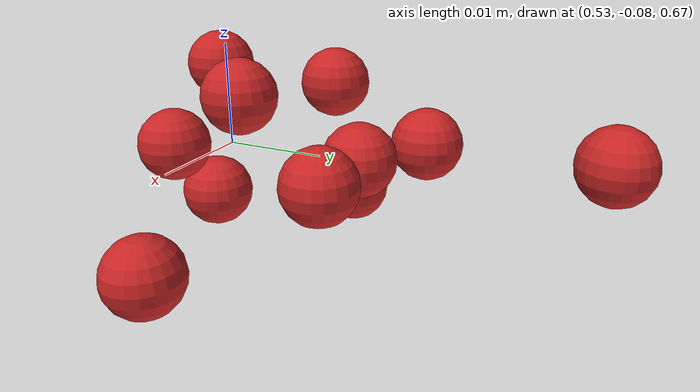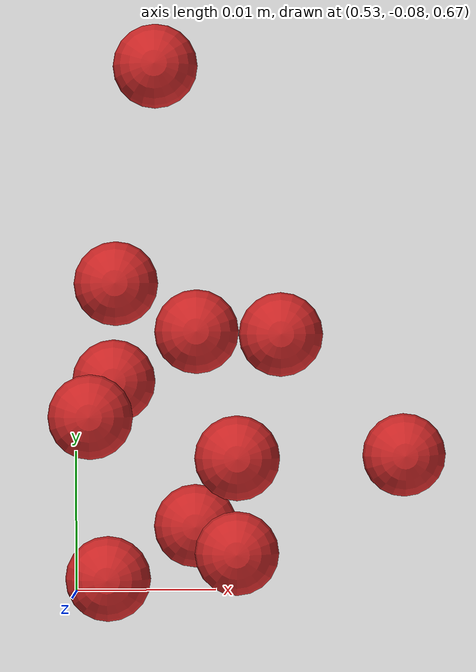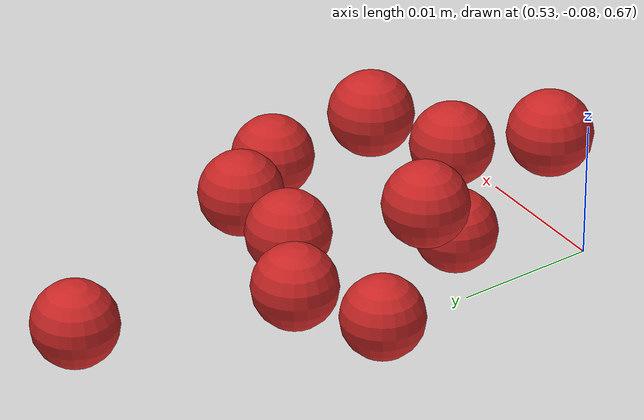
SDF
<sdf version="1.4">
 <world name="default">
  <model name="ground_plane">
   <static>1</static>
   <link name="link">
    <collision name="collision">
     <geometry><plane><normal>0 0 1</normal><size>100 100</size></plane></geometry>
     <surface><friction><ode><mu>100</mu><mu2>50</mu2></ode></friction></surface>
    </collision>
    <visual name="visual">
     <cast_shadows>0</cast_shadows>
     <geometry><plane><normal>0 0 1</normal><size>100 100</size></plane></geometry>
     <material>
      <script><uri>file://media/materials/scripts/gazebo.material</uri><name>Gazebo/Grey</name></script>
     </material>
    </visual>
    <velocity_decay><linear>0</linear><angular>0</angular></velocity_decay>
   </link>
  </model>
  <model name="sphere23">
   <pose>-0.012335 -0.028903 -0.063798 0.015874 0.008256 0.02301</pose>
   <link name="link">
    <pose>0.55876 -0.042781 0.738288 0 -0 0</pose>
    <inertial>
     <mass>0.0000001</mass>
     <inertia><ixx>0.00004</ixx><ixy>0</ixy><ixz>0</ixz><iyy>0.00004</iyy><iyz>0</iyz><izz>0.00004</izz></inertia>
    </inertial>
    <collision name="collision">
     <surface>
      <contact><ode><kp>1e+10</kp><kd>1</kd></ode></contact>
      <friction><ode><mu>0.01</mu><mu2>0.01</mu2></ode></friction>
     </surface>
     <geometry><sphere><radius>0.003</radius></sphere></geometry>
    </collision>
    <visual name="visual">
     <geometry><sphere><radius>0.003</radius></sphere></geometry>
     <material>
      <script><uri>file://media/materials/scripts/gazebo.material</uri><name>Gazebo/Red</name></script>
     </material>
    </visual>
    <velocity_decay><linear>0</linear><angular>0</angular></velocity_decay>
   </link>
   <static>0</static>
  </model>
  <model name="sphere71">
   <pose>-0.017201 -0.023582 -0.080373 -0.005462 0.004123 0.001031</pose>
   <link name="link">
    <pose>0.55876 -0.042781 0.756288 0 -0 0</pose>
    <inertial>
     <mass>0.0000001</mass>
     <inertia><ixx>0.00004</ixx><ixy>0</ixy><ixz>0</ixz><iyy>0.00004</iyy><iyz>0</iyz><izz>0.00004</izz></inertia>
    </inertial>
    <collision name="collision">
     <surface>
      <contact><ode><kp>1e+10</kp><kd>1</kd></ode></contact>
      <friction><ode><mu>0.01</mu><mu2>0.01</mu2></ode></friction>
     </surface>
     <geometry><sphere><radius>0.003</radius></sphere></geometry>
    </collision>
    <visual name="visual">
     <geometry><sphere><radius>0.003</radius></sphere></geometry>
     <material>
      <script><uri>file://media/materials/scripts/gazebo.material</uri><name>Gazebo/Red</name></script>
     </material>
    </visual>
    <velocity_decay><linear>0</linear><angular>0</angular></velocity_decay>
   </link>
   <static>0</static>
  </model>
  <model name="sphere73">
   <pose>-0.013422 -0.021461 -0.082614 -0.000653 -0.000434 -0.000436</pose>
   <link name="link">
    <pose>0.54676 -0.036781 0.756288 0 -0 0</pose>
    <inertial>
     <mass>0.0000001</mass>
     <inertia><ixx>0.00004</ixx><ixy>0</ixy><ixz>0</ixz><iyy>0.00004</iyy><iyz>0</iyz><izz>0.00004</izz></inertia>
    </inertial>
    <collision name="collision">
     <surface>
      <contact><ode><kp>1e+10</kp><kd>1</kd></ode></contact>
      <friction><ode><mu>0.01</mu><mu2>0.01</mu2></ode></friction>
     </surface>
     <geometry><sphere><radius>0.003</radius></sphere></geometry>
    </collision>
    <visual name="visual">
     <geometry><sphere><radius>0.003</radius></sphere></geometry>
     <material>
      <script><uri>file://media/materials/scripts/gazebo.material</uri><name>Gazebo/Red</name></script>
     </material>
    </visual>
    <velocity_decay><linear>0</linear><angular>0</angular></velocity_decay>
   </link>
   <static>0</static>
  </model>
  <model name="sphere74">
   <pose>-0.014007 -0.025548 -0.082469 -0.001105 -5.4e-05 0.00013</pose>
   <link name="link">
    <pose>0.55276 -0.036781 0.756288 0 -0 0</pose>
    <inertial>
     <mass>0.0000001</mass>
     <inertia><ixx>0.00004</ixx><ixy>0</ixy><ixz>0</ixz><iyy>0.00004</iyy><iyz>0</iyz><izz>0.00004</izz></inertia>
    </inertial>
    <collision name="collision">
     <surface>
      <contact><ode><kp>1e+10</kp><kd>1</kd></ode></contact>
      <friction><ode><mu>0.01</mu><mu2>0.01</mu2></ode></friction>
     </surface>
     <geometry><sphere><radius>0.003</radius></sphere></geometry>
    </collision>
    <visual name="visual">
     <geometry><sphere><radius>0.003</radius></sphere></geometry>
     <material>
      <script><uri>file://media/materials/scripts/gazebo.material</uri><name>Gazebo/Red</name></script>
     </material>
    </visual>
    <velocity_decay><linear>0</linear><angular>0</angular></velocity_decay>
   </link>
   <static>0</static>
  </model>
  <model name="sphere79">
   <pose>-0.01524 -0.026683 -0.086983 -0.021324 -0.010016 -0.002314</pose>
   <link name="link">
    <pose>0.55876 -0.030781 0.756288 0 -0 0</pose>
    <inertial>
     <mass>0.0000001</mass>
     <inertia><ixx>0.00004</ixx><ixy>0</ixy><ixz>0</ixz><iyy>0.00004</iyy><iyz>0</iyz><izz>0.00004</izz></inertia>
    </inertial>
    <collision name="collision">
     <surface>
      <contact><ode><kp>1e+10</kp><kd>1</kd></ode></contact>
      <friction><ode><mu>0.01</mu><mu2>0.01</mu2></ode></friction>
     </surface>
     <geometry><sphere><radius>0.003</radius></sphere></geometry>
    </collision>
    <visual name="visual">
     <geometry><sphere><radius>0.003</radius></sphere></geometry>
     <material>
      <script><uri>file://media/materials/scripts/gazebo.material</uri><name>Gazebo/Red</name></script>
     </material>
    </visual>
    <velocity_decay><linear>0</linear><angular>0</angular></velocity_decay>
   </link>
   <static>0</static>
  </model>
  <model name="sphere97">
   <pose>-0.010032 -0.028404 -0.098199 -0.001843 0.00233 0.000593</pose>
   <link name="link">
    <pose>0.54676 -0.048781 0.768288 0 -0 0</pose>
    <inertial>
     <mass>0.0000001</mass>
     <inertia><ixx>0.00004</ixx><ixy>0</ixy><ixz>0</ixz><iyy>0.00004</iyy><iyz>0</iyz><izz>0.00004</izz></inertia>
    </inertial>
    <collision name="collision">
     <surface>
      <contact><ode><kp>1e+10</kp><kd>1</kd></ode></contact>
      <friction><ode><mu>0.01</mu><mu2>0.01</mu2></ode></friction>
     </surface>
     <geometry><sphere><radius>0.003</radius></sphere></geometry>
    </collision>
    <visual name="visual">
     <geometry><sphere><radius>0.003</radius></sphere></geometry>
     <material>
      <script><uri>file://media/materials/scripts/gazebo.material</uri><name>Gazebo/Red</name></script>
     </material>
    </visual>
    <velocity_decay><linear>0</linear><angular>0</angular></velocity_decay>
   </link>
   <static>0</static>
  </model>
  <model name="sphere102">
   <pose>-0.012148 -0.027296 -0.088847 -0.000305 0.00131 -0.000832</pose>
   <link name="link">
    <pose>0.55276 -0.042781 0.768288 0 -0 0</pose>
    <inertial>
     <mass>0.0000001</mass>
     <inertia><ixx>0.00004</ixx><ixy>0</ixy><ixz>0</ixz><iyy>0.00004</iyy><iyz>0</iyz><izz>0.00004</izz></inertia>
    </inertial>
    <collision name="collision">
     <surface>
      <contact><ode><kp>1e+10</kp><kd>1</kd></ode></contact>
      <friction><ode><mu>0.01</mu><mu2>0.01</mu2></ode></friction>
     </surface>
     <geometry><sphere><radius>0.003</radius></sphere></geometry>
    </collision>
    <visual name="visual">
     <geometry><sphere><radius>0.003</radius></sphere></geometry>
     <material>
      <script><uri>file://media/materials/scripts/gazebo.material</uri><name>Gazebo/Red</name></script>
     </material>
    </visual>
    <velocity_decay><linear>0</linear><angular>0</angular></velocity_decay>
   </link>
   <static>0</static>
  </model>
  <model name="sphere162">
   <pose>-0.012261 -0.028132 -0.117735 0.000405 0.001298 1.6e-05</pose>
   <link name="link">
    <pose>0.55276 -0.048781 0.792288 0 -0 0</pose>
    <inertial>
     <mass>0.0000001</mass>
     <inertia><ixx>0.00004</ixx><ixy>0</ixy><ixz>0</ixz><iyy>0.00004</iyy><iyz>0</iyz><izz>0.00004</izz></inertia>
    </inertial>
    <collision name="collision">
     <surface>
      <contact><ode><kp>1e+10</kp><kd>1</kd></ode></contact>
      <friction><ode><mu>0.01</mu><mu2>0.01</mu2></ode></friction>
     </surface>
     <geometry><sphere><radius>0.003</radius></sphere></geometry>
    </collision>
    <visual name="visual">
     <geometry><sphere><radius>0.003</radius></sphere></geometry>
     <material>
      <script><uri>file://media/materials/scripts/gazebo.material</uri><name>Gazebo/Red</name></script>
     </material>
    </visual>
    <velocity_decay><linear>0</linear><angular>0</angular></velocity_decay>
   </link>
   <static>0</static>
  </model>
  <model name="sphere164">
   <pose>-0.014533 -0.022233 -0.118922 -0.001033 0.008241 -0.001442</pose>
   <link name="link">
    <pose>0.54076 -0.042781 0.792288 0 -0 0</pose>
    <inertial>
     <mass>0.0000001</mass>
     <inertia><ixx>0.00004</ixx><ixy>0</ixy><ixz>0</ixz><iyy>0.00004</iyy><iyz>0</iyz><izz>0.00004</izz></inertia>
    </inertial>
    <collision name="collision">
     <surface>
      <contact><ode><kp>1e+10</kp><kd>1</kd></ode></contact>
      <friction><ode><mu>0.01</mu><mu2>0.01</mu2></ode></friction>
     </surface>
     <geometry><sphere><radius>0.003</radius></sphere></geometry>
    </collision>
    <visual name="visual">
     <geometry><sphere><radius>0.003</radius></sphere></geometry>
     <material>
      <script><uri>file://media/materials/scripts/gazebo.material</uri><name>Gazebo/Red</name></script>
     </material>
    </visual>
    <velocity_decay><linear>0</linear><angular>0</angular></velocity_decay>
   </link>
   <static>0</static>
  </model>
  <model name="sphere169">
   <pose>-0.014743 -0.031748 -0.114993 -0.001445 -0.000951 -2.7e-05</pose>
   <link name="link">
    <pose>0.54676 -0.036781 0.792288 0 -0 0</pose>
    <inertial>
     <mass>0.0000001</mass>
     <inertia><ixx>0.00004</ixx><ixy>0</ixy><ixz>0</ixz><iyy>0.00004</iyy><iyz>0</iyz><izz>0.00004</izz></inertia>
    </inertial>
    <collision name="collision">
     <surface>
      <contact><ode><kp>1e+10</kp><kd>1</kd></ode></contact>
      <friction><ode><mu>0.01</mu><mu2>0.01</mu2></ode></friction>
     </surface>
     <geometry><sphere><radius>0.003</radius></sphere></geometry>
    </collision>
    <visual name="visual">
     <geometry><sphere><radius>0.003</radius></sphere></geometry>
     <material>
      <script><uri>file://media/materials/scripts/gazebo.material</uri><name>Gazebo/Red</name></script>
     </material>
    </visual>
    <velocity_decay><linear>0</linear><angular>0</angular></velocity_decay>
   </link>
   <static>0</static>
  </model>
  <model name="sphere193">
   <pose>-0.01375 -0.028549 -0.12578 0.001516 -0.000605 -0.000321</pose>
   <link name="link">
    <pose>0.54676 -0.048781 0.804288 0 -0 0</pose>
    <inertial>
     <mass>0.0000001</mass>
     <inertia><ixx>0.00004</ixx><ixy>0</ixy><ixz>0</ixz><iyy>0.00004</iyy><iyz>0</iyz><izz>0.00004</izz></inertia>
    </inertial>
    <collision name="collision">
     <surface>
      <contact><ode><kp>1e+10</kp><kd>1</kd></ode></contact>
      <friction><ode><mu>0.01</mu><mu2>0.01</mu2></ode></friction>
     </surface>
     <geometry><sphere><radius>0.003</radius></sphere></geometry>
    </collision>
    <visual name="visual">
     <geometry><sphere><radius>0.003</radius></sphere></geometry>
     <material>
      <script><uri>file://media/materials/scripts/gazebo.material</uri><name>Gazebo/Red</name></script>
     </material>
    </visual>
    <velocity_decay><linear>0</linear><angular>0</angular></velocity_decay>
   </link>
   <static>0</static>
  </model>
 </world>
</sdf>
